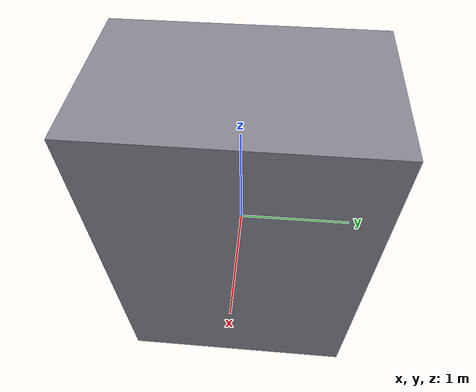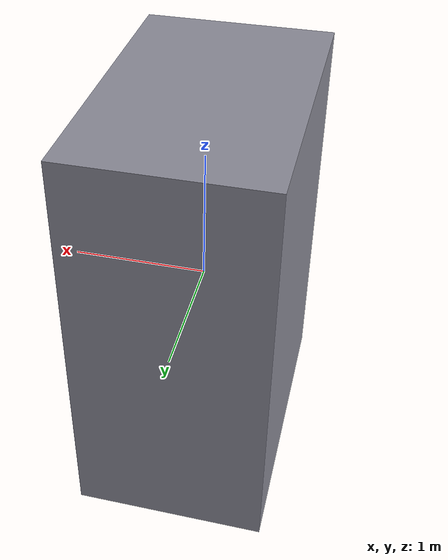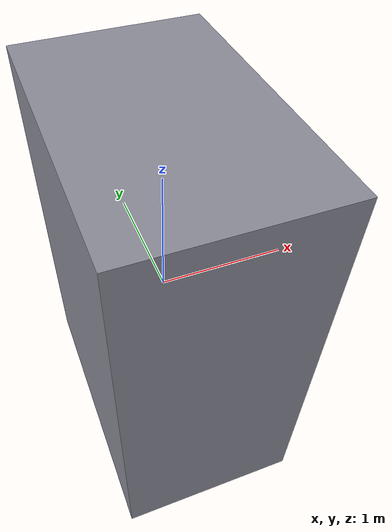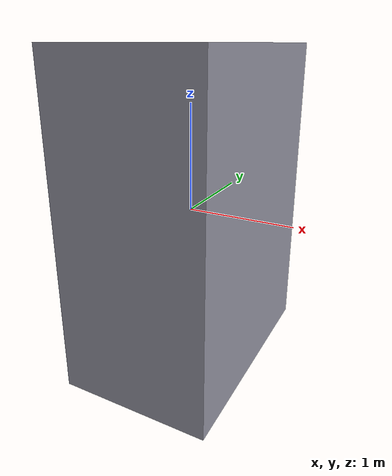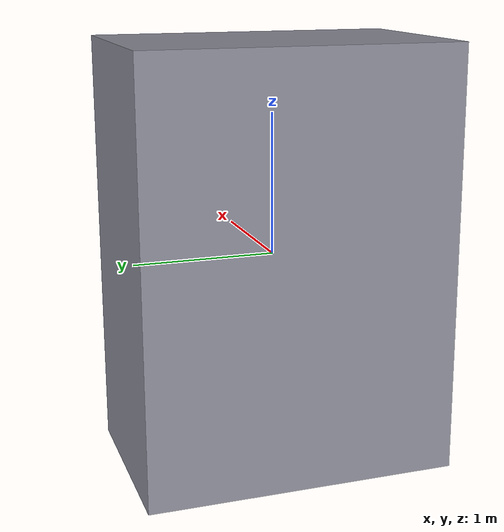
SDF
<?xml version="1.0" ?>
<sdf version="1.9">
  <model name="building_box">
    <static>true</static>
    <link name="link">
      <collision name="collision">
        <geometry><box><size>1.4 2.2 3.0</size></box></geometry>
      </collision>
      <visual name="visual">
        <geometry><box><size>1.4 2.2 3.0</size></box></geometry>
        <material>
          <ambient>0.55 0.55 0.6 1</ambient>
          <diffuse>0.55 0.55 0.6 1</diffuse>
        </material>
      </visual>
    </link>
  </model>
</sdf>
